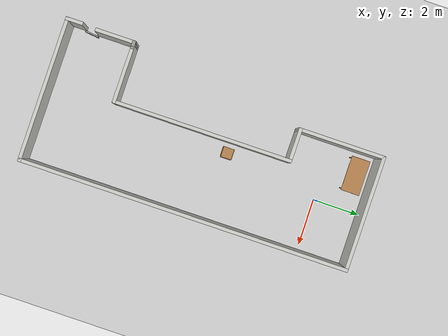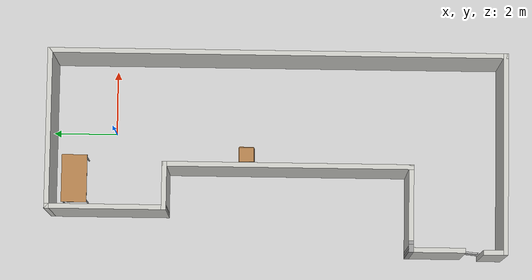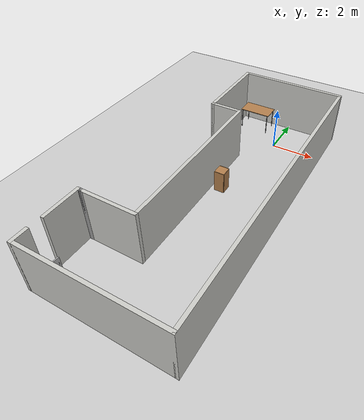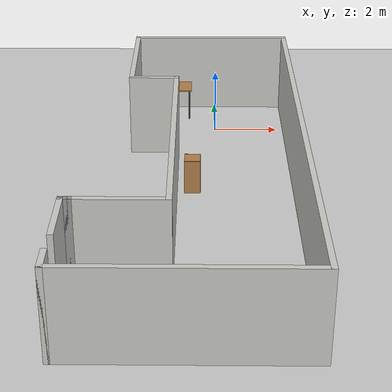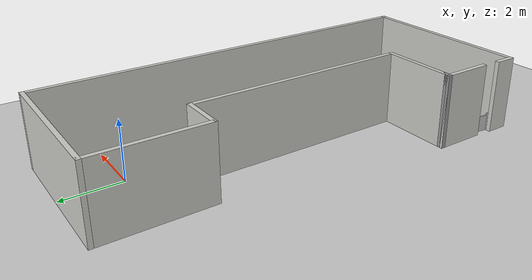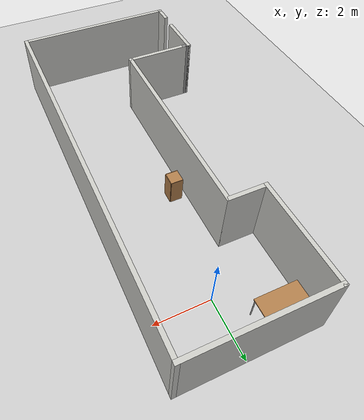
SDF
<sdf version="1.7">
 <world name="default">
  <light name="sun" type="directional">
   <pose>0 0 10 0 -0 0</pose>
   <diffuse>0.8 0.8 0.8 1</diffuse>
   <specular>0.2 0.2 0.2 1</specular>
   <attenuation>
    <range>1000</range>
    <constant>0.9</constant>
    <linear>0.01</linear>
    <quadratic>0.001</quadratic>
   </attenuation>
   <direction>-0.5 0.1 -0.9</direction>
   <spot><inner_angle>0</inner_angle><outer_angle>0</outer_angle><falloff>0</falloff></spot>
  </light>
  <model name="ground_plane">
   <static>1</static>
   <link name="link">
    <collision name="collision">
     <geometry><plane><normal>0 0 1</normal><size>100 100</size></plane></geometry>
     <surface>
      <contact><collide_bitmask>65535</collide_bitmask></contact>
      <friction><ode><mu>100</mu><mu2>50</mu2></ode></friction>
     </surface>
    </collision>
    <visual name="visual">
     <cast_shadows>0</cast_shadows>
     <geometry><plane><normal>0 0 1</normal><size>100 100</size></plane></geometry>
     <material>
      <script><uri>file://media/materials/scripts/gazebo.material</uri><name>Gazebo/Grey</name></script>
     </material>
    </visual>
   </link>
  </model>
  <gravity>0 0 -9.8</gravity>
  <magnetic_field>6e-06 2.3e-05 -4.2e-05</magnetic_field>
  <atmosphere type="adiabatic"/>
  <physics type="ode">
   <max_step_size>0.001</max_step_size>
   <real_time_factor>1</real_time_factor>
   <real_time_update_rate>1000</real_time_update_rate>
  </physics>
  <scene><ambient>0.4 0.4 0.4 1</ambient><background>0.7 0.7 0.7 1</background><shadows>1</shadows></scene>
  <spherical_coordinates>
   <surface_model>EARTH_WGS84</surface_model>
   <latitude_deg>0</latitude_deg>
   <longitude_deg>0</longitude_deg>
   <elevation>0</elevation>
   <heading_deg>0</heading_deg>
  </spherical_coordinates>
  <model name="longC-shaped-room">
   <pose>-0.761805 -5.09129 0 0 -0 0</pose>
   <link name="Wall_0">
    <collision name="Wall_0_Collision">
     <geometry><box><size>0.75 0.15 2.5</size></box></geometry>
     <pose>0 0 1.25 0 -0 0</pose>
    </collision>
    <visual name="Wall_0_Visual">
     <pose>0 0 1.25 0 -0 0</pose>
     <geometry><box><size>0.75 0.15 2.5</size></box></geometry>
     <material>
      <script><uri>file://media/materials/scripts/gazebo.material</uri><name>Gazebo/CeilingTiled</name></script>
      <ambient>0.435294 0.796078 0.67451 1</ambient>
     </material>
     <meta><layer>0</layer></meta>
    </visual>
    <pose>-3.05 -6.75 0 0 -0 -1.5708</pose>
   </link>
   <link name="Wall_1">
    <collision name="Wall_1_Collision">
     <geometry><box><size>6.25 0.15 2.5</size></box></geometry>
     <pose>0 0 1.25 0 -0 0</pose>
    </collision>
    <visual name="Wall_1_Visual">
     <pose>0 0 1.25 0 -0 0</pose>
     <geometry><box><size>6.25 0.15 2.5</size></box></geometry>
     <material>
      <script><uri>file://media/materials/scripts/gazebo.material</uri><name>Gazebo/CeilingTiled</name></script>
      <ambient>0.435294 0.796078 0.67451 1</ambient>
     </material>
     <meta><layer>0</layer></meta>
    </visual>
    <pose>-0 -7.05 0 0 -0 0</pose>
   </link>
   <link name="Wall_10">
    <collision name="Wall_10_Collision">
     <geometry><box><size>1.75 0.15 2.5</size></box></geometry>
     <pose>0 0 1.25 0 -0 0</pose>
    </collision>
    <visual name="Wall_10_Visual">
     <pose>0 0 1.25 0 -0 0</pose>
     <geometry><box><size>1.75 0.15 2.5</size></box></geometry>
     <material>
      <script><uri>file://media/materials/scripts/gazebo.material</uri><name>Gazebo/CeilingTiled</name></script>
      <ambient>0.435294 0.796078 0.67451 1</ambient>
     </material>
     <meta><layer>0</layer></meta>
    </visual>
    <pose>-3 -4.95 0 0 -0 -1.5708</pose>
   </link>
   <link name="Wall_2">
    <collision name="Wall_2_Collision">
     <geometry><box><size>14.25 0.15 2.5</size></box></geometry>
     <pose>0 0 1.25 0 -0 0</pose>
    </collision>
    <visual name="Wall_2_Visual">
     <pose>0 0 1.25 0 -0 0</pose>
     <geometry><box><size>14.25 0.15 2.5</size></box></geometry>
     <material>
      <script><uri>file://media/materials/scripts/gazebo.material</uri><name>Gazebo/CeilingTiled</name></script>
      <ambient>0.435294 0.796078 0.67451 1</ambient>
     </material>
     <meta><layer>0</layer></meta>
    </visual>
    <pose>3.05 0 0 0 -0 1.5708</pose>
   </link>
   <link name="Wall_3">
    <collision name="Wall_3_Collision">
     <geometry><box><size>5 0.15 2.5</size></box></geometry>
     <pose>0 0 1.25 0 -0 0</pose>
    </collision>
    <visual name="Wall_3_Visual">
     <pose>0 0 1.25 0 -0 0</pose>
     <geometry><box><size>5 0.15 2.5</size></box></geometry>
     <material>
      <script><uri>file://media/materials/scripts/gazebo.material</uri><name>Gazebo/CeilingTiled</name></script>
      <ambient>0.435294 0.796078 0.67451 1</ambient>
     </material>
     <meta><layer>0</layer></meta>
    </visual>
    <pose>0.625 7.05 0 0 -0 3.14159</pose>
   </link>
   <link name="Wall_4">
    <collision name="Wall_4_Collision">
     <geometry><box><size>3.75 0.15 2.5</size></box></geometry>
     <pose>0 0 1.25 0 -0 0</pose>
    </collision>
    <visual name="Wall_4_Visual">
     <pose>0 0 1.25 0 -0 0</pose>
     <geometry><box><size>3.75 0.15 2.5</size></box></geometry>
     <material>
      <script><uri>file://media/materials/scripts/gazebo.material</uri><name>Gazebo/CeilingTiled</name></script>
      <ambient>0.435294 0.796078 0.67451 1</ambient>
     </material>
     <meta><layer>0</layer></meta>
    </visual>
    <pose>-1.8 5.25 0 0 -0 -1.5708</pose>
   </link>
   <link name="Wall_5">
    <collision name="Wall_5_Collision">
     <geometry><box><size>1.5 0.15 2.5</size></box></geometry>
     <pose>0 0 1.25 0 -0 0</pose>
    </collision>
    <visual name="Wall_5_Visual">
     <pose>0 0 1.25 0 -0 0</pose>
     <geometry><box><size>1.5 0.15 2.5</size></box></geometry>
     <material>
      <script><uri>file://media/materials/scripts/gazebo.material</uri><name>Gazebo/CeilingTiled</name></script>
      <ambient>0.435294 0.796078 0.67451 1</ambient>
     </material>
     <meta><layer>0</layer></meta>
    </visual>
    <pose>-1.125 3.45 0 0 -0 0</pose>
   </link>
   <link name="Wall_6">
    <collision name="Wall_6_Collision">
     <geometry><box><size>7.75 0.15 2.5</size></box></geometry>
     <pose>0 0 1.25 0 -0 0</pose>
    </collision>
    <visual name="Wall_6_Visual">
     <pose>0 0 1.25 0 -0 0</pose>
     <geometry><box><size>7.75 0.15 2.5</size></box></geometry>
     <material>
      <script><uri>file://media/materials/scripts/gazebo.material</uri><name>Gazebo/CeilingTiled</name></script>
      <ambient>0.435294 0.796078 0.67451 1</ambient>
     </material>
     <meta><layer>0</layer></meta>
    </visual>
    <pose>-0.45 -0.35 0 0 -0 -1.5708</pose>
   </link>
   <link name="Wall_7">
    <collision name="Wall_7_Collision">
     <geometry><box><size>2.5 0.15 2.5</size></box></geometry>
     <pose>0 0 1.25 0 -0 0</pose>
    </collision>
    <visual name="Wall_7_Visual">
     <pose>0 0 1.25 0 -0 0</pose>
     <geometry><box><size>2.5 0.15 2.5</size></box></geometry>
     <material>
      <script><uri>file://media/materials/scripts/gazebo.material</uri><name>Gazebo/CeilingTiled</name></script>
      <ambient>0.435294 0.796078 0.67451 1</ambient>
     </material>
     <meta><layer>0</layer></meta>
    </visual>
    <pose>-1.625 -4.15 0 0 -0 3.14159</pose>
   </link>
   <link name="Wall_8">
    <collision name="Wall_8_Collision">
     <geometry><box><size>0.25 0.15 2.5</size></box></geometry>
     <pose>0 0 1.25 0 -0 0</pose>
    </collision>
    <visual name="Wall_8_Visual">
     <pose>0 0 1.25 0 -0 0</pose>
     <geometry><box><size>0.25 0.15 2.5</size></box></geometry>
     <material>
      <script><uri>file://media/materials/scripts/gazebo.material</uri><name>Gazebo/Grey</name></script>
      <ambient>1 1 1 1</ambient>
     </material>
     <meta><layer>0</layer></meta>
    </visual>
    <pose>-2.85 -4.15 0 0 -0 3.14159</pose>
   </link>
   <link name="Wall_9">
    <collision name="Wall_9_Collision">
     <geometry><box><size>0.25 0.15 2.5</size></box></geometry>
     <pose>0 0 1.25 0 -0 0</pose>
    </collision>
    <visual name="Wall_9_Visual">
     <pose>0 0 1.25 0 -0 0</pose>
     <geometry><box><size>0.25 0.15 2.5</size></box></geometry>
     <material>
      <script><uri>file://media/materials/scripts/gazebo.material</uri><name>Gazebo/Grey</name></script>
      <ambient>1 1 1 1</ambient>
     </material>
     <meta><layer>0</layer></meta>
    </visual>
    <pose>-2.95 -4.15 0 0 -0 3.14159</pose>
   </link>
   <static>1</static>
  </model>
  <model name="door-model">
   <link name="door">
    <inertial>
     <mass>20</mass>
     <inertia>
      <ixx>4.53808</ixx>
      <ixy>0</ixy>
      <ixz>0</ixz>
      <iyy>4.54003</iyy>
      <iyz>0</iyz>
      <izz>0.0512722</izz>
     </inertia>
    </inertial>
    <gravity>0</gravity>
    <visual name="visual">
     <geometry><mesh><uri>model://door-model/./Door.dae</uri><scale>0.001 0.001 0.001</scale></mesh></geometry>
    </visual>
    <collision name="collision">
     <geometry><mesh><uri>model://door-model/./Door.dae</uri><scale>0.001 0.001 0.001</scale></mesh></geometry>
     <surface>
      <friction>
       <ode><mu>1</mu><mu2>1</mu2><fdir1>0 0 0</fdir1><slip1>0</slip1><slip2>0</slip2></ode>
       <torsional>
        <coefficient>1</coefficient>
        <patch_radius>0</patch_radius>
        <surface_radius>0</surface_radius>
        <use_patch_radius>1</use_patch_radius>
        <ode><slip>0</slip></ode>
       </torsional>
      </friction>
      <bounce><restitution_coefficient>0</restitution_coefficient><threshold>1e+06</threshold></bounce>
      <contact>
       <collide_without_contact>0</collide_without_contact>
       <collide_without_contact_bitmask>1</collide_without_contact_bitmask>
       <collide_bitmask>1</collide_bitmask>
       <ode>
        <soft_cfm>0</soft_cfm>
        <soft_erp>0.2</soft_erp>
        <kp>1e+13</kp>
        <kd>1</kd>
        <max_vel>0.01</max_vel>
        <min_depth>0</min_depth>
       </ode>
       <bullet>
        <split_impulse>1</split_impulse>
        <split_impulse_penetration_threshold>-0.01</split_impulse_penetration_threshold>
        <soft_cfm>0</soft_cfm>
        <soft_erp>0.2</soft_erp>
        <kp>1e+13</kp>
        <kd>1</kd>
       </bullet>
      </contact>
     </surface>
    </collision>
   </link>
   <link name="pole">
    <inertial>
     <mass>100</mass>
     <inertia>
      <ixx>0.001</ixx>
      <ixy>0.001</ixy>
      <ixz>0.001</ixz>
      <iyy>0.001</iyy>
      <iyz>0.001</iyz>
      <izz>0.001</izz>
     </inertia>
    </inertial>
    <pose>-0.02632 0 0.308096 0 -0 0</pose>
    <gravity>0</gravity>
    <kinematic>1</kinematic>
    <visual name="visual">
     <geometry><box><size>0.048276 0.0462 0.625074</size></box></geometry>
     <material>
      <lighting>1</lighting>
      <script><uri>file://media/materials/scripts/gazebo.material</uri><name>Gazebo/White</name></script>
      <ambient>1 1 1 1</ambient>
     </material>
    </visual>
    <collision name="collision">
     <geometry><box><size>0.048 0.046201 0.625074</size></box></geometry>
     <surface>
      <friction>
       <ode><mu>1</mu><mu2>1</mu2><fdir1>0 0 0</fdir1><slip1>0</slip1><slip2>0</slip2></ode>
       <torsional>
        <coefficient>1</coefficient>
        <patch_radius>0</patch_radius>
        <surface_radius>0</surface_radius>
        <use_patch_radius>1</use_patch_radius>
        <ode><slip>0</slip></ode>
       </torsional>
      </friction>
      <bounce><restitution_coefficient>0</restitution_coefficient><threshold>1e+06</threshold></bounce>
      <contact>
       <collide_without_contact>0</collide_without_contact>
       <collide_without_contact_bitmask>1</collide_without_contact_bitmask>
       <collide_bitmask>1</collide_bitmask>
       <ode>
        <soft_cfm>0</soft_cfm>
        <soft_erp>0.2</soft_erp>
        <kp>1e+13</kp>
        <kd>1</kd>
        <max_vel>0.01</max_vel>
        <min_depth>0</min_depth>
       </ode>
       <bullet>
        <split_impulse>1</split_impulse>
        <split_impulse_penetration_threshold>-0.01</split_impulse_penetration_threshold>
        <soft_cfm>0</soft_cfm>
        <soft_erp>0.2</soft_erp>
        <kp>1e+13</kp>
        <kd>1</kd>
       </bullet>
      </contact>
     </surface>
    </collision>
   </link>
   <joint name="hinge" type="revolute">
    <parent>pole</parent>
    <child>door</child>
    <pose>0 0 0.3 0 -0 0</pose>
    <axis>
     <xyz>0 0 1</xyz>
     <limit><lower>-1.74533</lower><upper>1.74533</upper><effort>3900</effort><velocity>0.62</velocity></limit>
     <dynamics>
      <spring_reference>0</spring_reference>
      <spring_stiffness>0</spring_stiffness>
      <damping>0.1</damping>
      <friction>0.1</friction>
     </dynamics>
    </axis>
    <physics>
     <ode><limit><cfm>0</cfm><erp>0.2</erp></limit><suspension><cfm>0</cfm><erp>0.2</erp></suspension></ode>
    </physics>
   </joint>
   <static>0</static>
   <pose>-3.68368 -11.446 0 0 -0 1.46598</pose>
  </model>
  <model name="table">
   <static>1</static>
   <link name="link">
    <collision name="surface">
     <pose>0 0 1 0 -0 0</pose>
     <geometry><box><size>1.5 0.8 0.03</size></box></geometry>
     <surface><friction><ode><mu>0.6</mu><mu2>0.6</mu2></ode></friction></surface>
    </collision>
    <visual name="visual1">
     <pose>0 0 1 0 -0 0</pose>
     <geometry><box><size>1.5 0.8 0.03</size></box></geometry>
     <material>
      <script><uri>file://media/materials/scripts/gazebo.material</uri><name>Gazebo/Wood</name></script>
     </material>
    </visual>
    <collision name="front_left_leg">
     <pose>0.68 0.38 0.5 0 -0 0</pose>
     <geometry><cylinder><radius>0.02</radius><length>1</length></cylinder></geometry>
    </collision>
    <visual name="front_left_leg">
     <pose>0.68 0.38 0.5 0 -0 0</pose>
     <geometry><cylinder><radius>0.02</radius><length>1</length></cylinder></geometry>
     <material>
      <script><uri>file://media/materials/scripts/gazebo.material</uri><name>Gazebo/Grey</name></script>
     </material>
    </visual>
    <collision name="front_right_leg">
     <pose>0.68 -0.38 0.5 0 -0 0</pose>
     <geometry><cylinder><radius>0.02</radius><length>1</length></cylinder></geometry>
    </collision>
    <visual name="front_right_leg">
     <pose>0.68 -0.38 0.5 0 -0 0</pose>
     <geometry><cylinder><radius>0.02</radius><length>1</length></cylinder></geometry>
     <material>
      <script><uri>file://media/materials/scripts/gazebo.material</uri><name>Gazebo/Grey</name></script>
     </material>
    </visual>
    <collision name="back_right_leg">
     <pose>-0.68 -0.38 0.5 0 -0 0</pose>
     <geometry><cylinder><radius>0.02</radius><length>1</length></cylinder></geometry>
    </collision>
    <visual name="back_right_leg">
     <pose>-0.68 -0.38 0.5 0 -0 0</pose>
     <geometry><cylinder><radius>0.02</radius><length>1</length></cylinder></geometry>
     <material>
      <script><uri>file://media/materials/scripts/gazebo.material</uri><name>Gazebo/Grey</name></script>
     </material>
    </visual>
    <collision name="back_left_leg">
     <pose>-0.68 0.38 0.5 0 -0 0</pose>
     <geometry><cylinder><radius>0.02</radius><length>1</length></cylinder></geometry>
    </collision>
    <visual name="back_left_leg">
     <pose>-0.68 0.38 0.5 0 -0 0</pose>
     <geometry><cylinder><radius>0.02</radius><length>1</length></cylinder></geometry>
     <material>
      <script><uri>file://media/materials/scripts/gazebo.material</uri><name>Gazebo/Grey</name></script>
     </material>
    </visual>
   </link>
   <pose>-1.52826 1.25388 0 0 -0 0</pose>
  </model>
  <model name="cabinet">
   <static>1</static>
   <link name="cabinet_bottom_plate">
    <inertial>
     <pose>0 0 -1 0 -0 0</pose>
     <inertia><ixx>2.05</ixx><ixy>0</ixy><ixz>0</ixz><iyy>2.05</iyy><iyz>0</iyz><izz>2.05</izz></inertia>
     <mass>25</mass>
    </inertial>
    <collision name="cabinet_bottom_plate_geom">
     <pose>0 0 0.01 0 -0 0</pose>
     <geometry><box><size>0.45 0.45 0.02</size></box></geometry>
    </collision>
    <visual name="cabinet_bottom_plate_geom_visual">
     <pose>0 0 0.01 0 -0 0</pose>
     <geometry><box><size>0.45 0.45 0.02</size></box></geometry>
     <material>
      <script><uri>file://media/materials/scripts/gazebo.material</uri><name>Gazebo/Wood</name></script>
     </material>
    </visual>
    <collision name="cabinet_bottom_plate_geom_cabinet_back_plate">
     <pose>0.235 0 0.51 0 -0 0</pose>
     <geometry><box><size>0.02 0.45 1.02</size></box></geometry>
    </collision>
    <visual name="cabinet_bottom_plate_geom_cabinet_back_plate_visual">
     <pose>0.235 0 0.51 0 -0 0</pose>
     <geometry><box><size>0.02 0.45 1.02</size></box></geometry>
     <material>
      <script><uri>file://media/materials/scripts/gazebo.material</uri><name>Gazebo/Wood</name></script>
     </material>
    </visual>
    <collision name="cabinet_bottom_plate_geom_cabinet_left_plate">
     <pose>0 0.235 0.51 0 -0 0</pose>
     <geometry><box><size>0.45 0.02 1.02</size></box></geometry>
    </collision>
    <visual name="cabinet_bottom_plate_geom_cabinet_left_plate_visual">
     <pose>0 0.235 0.51 0 -0 0</pose>
     <geometry><box><size>0.45 0.02 1.02</size></box></geometry>
     <material>
      <script><uri>file://media/materials/scripts/gazebo.material</uri><name>Gazebo/Wood</name></script>
     </material>
    </visual>
    <collision name="cabinet_bottom_plate_geom_cabinet_middle_plate">
     <pose>0 0 0.51 0 -0 0</pose>
     <geometry><box><size>0.45 0.45 0.02</size></box></geometry>
    </collision>
    <visual name="cabinet_bottom_plate_geom_cabinet_middle_plate_visual">
     <pose>0 0 0.51 0 -0 0</pose>
     <geometry><box><size>0.45 0.45 0.02</size></box></geometry>
     <material>
      <script><uri>file://media/materials/scripts/gazebo.material</uri><name>Gazebo/Wood</name></script>
     </material>
    </visual>
    <collision name="cabinet_bottom_plate_geom_cabinet_right_plate">
     <pose>0 -0.235 0.51 0 -0 0</pose>
     <geometry><box><size>0.45 0.02 1.02</size></box></geometry>
    </collision>
    <visual name="cabinet_bottom_plate_geom_cabinet_right_plate_visual">
     <pose>0 -0.235 0.51 0 -0 0</pose>
     <geometry><box><size>0.45 0.02 1.02</size></box></geometry>
     <material>
      <script><uri>file://media/materials/scripts/gazebo.material</uri><name>Gazebo/Wood</name></script>
     </material>
    </visual>
    <collision name="cabinet_bottom_plate_geom_cabinet_top_plate">
     <pose>0 0 1.01 0 -0 0</pose>
     <geometry><box><size>0.45 0.45 0.02</size></box></geometry>
    </collision>
    <visual name="cabinet_bottom_plate_geom_cabinet_top_plate_visual">
     <pose>0 0 1.01 0 -0 0</pose>
     <geometry><box><size>0.45 0.45 0.02</size></box></geometry>
     <material>
      <script><uri>file://media/materials/scripts/gazebo.material</uri><name>Gazebo/Wood</name></script>
     </material>
    </visual>
   </link>
   <pose>-0.708759 -4.14297 0 0 -0 0</pose>
  </model>
 </world>
</sdf>
